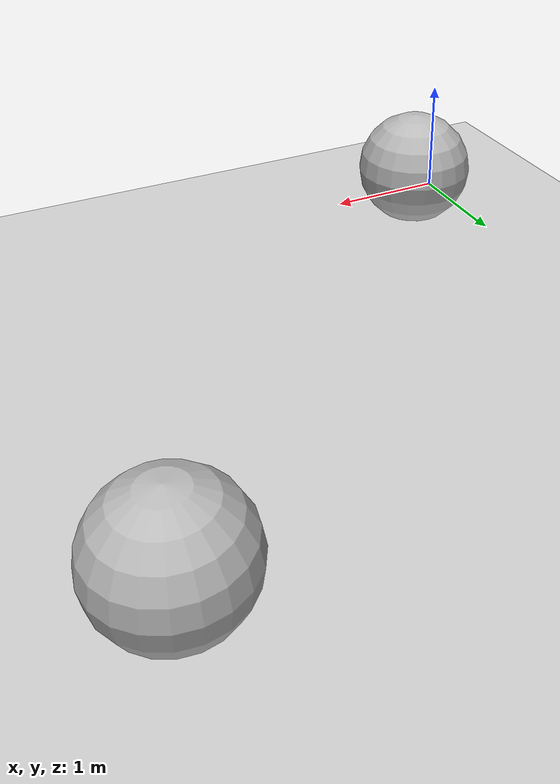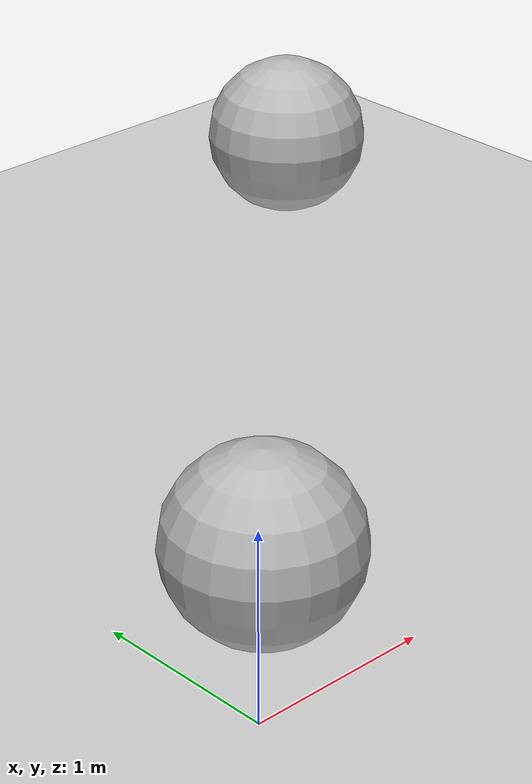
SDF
<?xml version="1.0"?>
<sdf version="1.4">
  <world name="default">

    <!-- Ground Plane -->
    <include>
      <uri>model://ground_plane</uri>
    </include>

    <include>
      <uri>model://sun</uri>
    </include>

    <model name="robot1">
      <pose>0.5 0.5 0.5 0 0 0</pose>
      <link name="link">
        <collision name="collision">
          <geometry>
            <sphere>
              <radius>0.5</radius>
            </sphere>
          </geometry>
        </collision>

        <visual name="visual">
          <geometry>
            <sphere>
              <radius>0.5</radius>
            </sphere>
          </geometry>
        </visual>
      </link>

    </model>
<model name="robot2">
      <pose>4 4 0.5 0 0 0</pose>
      <link name="link">
        <collision name="collision">
          <geometry>
            <sphere>
              <radius>0.5</radius>
            </sphere>
          </geometry>
        </collision>

        <visual name="visual">
          <geometry>
            <sphere>
              <radius>0.5</radius>
            </sphere>
          </geometry>
        </visual>
      </link>

      <plugin name="model_push" filename="build/libmodel_push.so"/>
    </model>
  </world>
</sdf>
